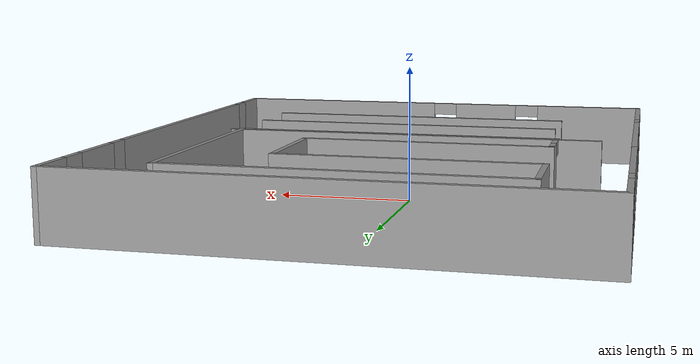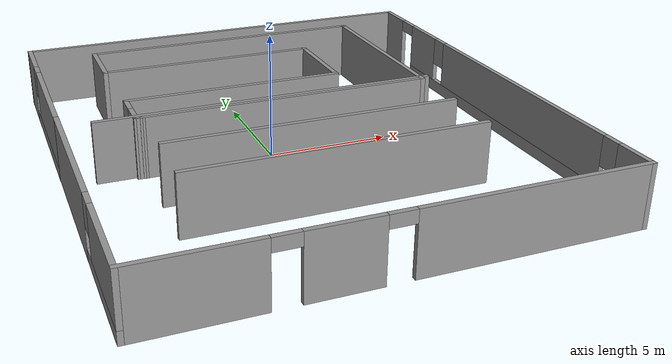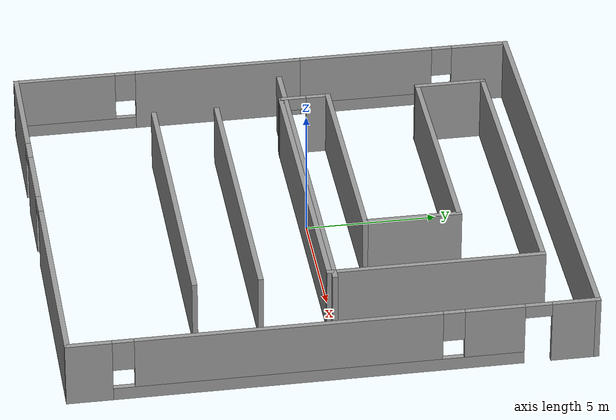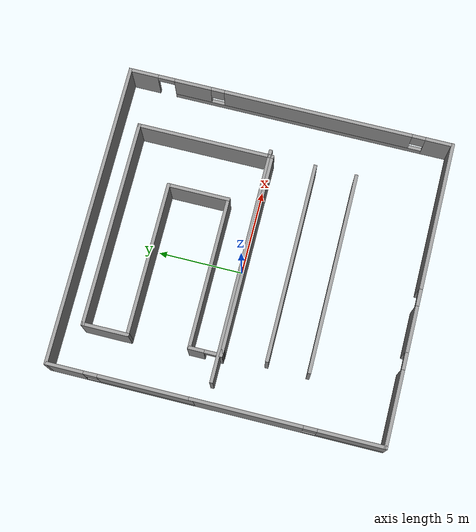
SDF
<?xml version='1.0'?>
<sdf version='1.4'>
  <model name='whouse'>
    <link name='Wall_24'>
      <collision name='Wall_24_Collision'>
        <geometry>
          <box>
            <size>14.0 0.2 2.5</size>
          </box>
        </geometry>
        <pose>0 0 1.25 0 -0 0</pose>
      </collision>
      <visual name='Wall_24_Visual'>
        <pose>0 0 1.25 0 -0 0</pose>
        <geometry>
          <box>
            <size>14.0 0.2 2.5</size>
          </box>
        </geometry>
        <material>
          <script>
            <uri>file://media/materials/scripts/gazebo.material</uri>
            <name>Gazebo/Grey</name>
          </script>
        </material>
      </visual>
      <velocity_decay>
        <linear>0</linear>
        <angular>0</angular>
      </velocity_decay>
      <pose>0 0 0 0 -0 0</pose>
    </link>
    <link name='Wall_26'>
      <collision name='Wall_26_Collision'>
        <geometry>
          <box>
            <size>11.9041 0.2 2.5</size>
          </box>
        </geometry>
        <pose>0 0 1.25 0 -0 0</pose>
      </collision>
      <visual name='Wall_26_Visual'>
        <pose>0 0 1.25 0 -0 0</pose>
        <geometry>
          <box>
            <size>11.9041 0.2 2.5</size>
          </box>
        </geometry>
        <material>
          <script>
            <uri>file://media/materials/scripts/gazebo.material</uri>
            <name>Gazebo/Grey</name>
          </script>
        </material>
      </visual>
      <velocity_decay>
        <linear>0</linear>
        <angular>0</angular>
      </velocity_decay>
      <pose>0.776272 -5.17892 0 0 -0 0</pose>
    </link>
    <link name='Wall_28'>
      <collision name='Wall_28_Collision'>
        <geometry>
          <box>
            <size>11.8509 0.2 2.5</size>
          </box>
        </geometry>
        <pose>0 0 1.25 0 -0 0</pose>
      </collision>
      <visual name='Wall_28_Visual'>
        <pose>0 0 1.25 0 -0 0</pose>
        <geometry>
          <box>
            <size>11.8509 0.2 2.5</size>
          </box>
        </geometry>
        <material>
          <script>
            <uri>file://media/materials/scripts/gazebo.material</uri>
            <name>Gazebo/Grey</name>
          </script>
        </material>
      </visual>
      <velocity_decay>
        <linear>0</linear>
        <angular>0</angular>
      </velocity_decay>
      <pose>0.802873 -2.7317 0 0 -0 0</pose>
    </link>
    <link name='Wall_3'>
      <pose>-8.13557 -4.65606 0 0 0 -1.5708</pose>
      <visual name='Wall_3_Visual_0'>
        <pose>-2.38773 0 1.25 0 -0 0</pose>
        <geometry>
          <box>
            <size>6.54185 0.2 2.5</size>
          </box>
        </geometry>
        <material>
          <script>
            <uri>file://media/materials/scripts/gazebo.material</uri>
            <name>Gazebo/Grey</name>
          </script>
        </material>
      </visual>
      <collision name='Wall_3_Collision_0'>
        <geometry>
          <box>
            <size>6.54185 0.2 2.5</size>
          </box>
        </geometry>
        <pose>-2.38773 0 1.25 0 -0 0</pose>
      </collision>
      <visual name='Wall_3_Visual_1'>
        <pose>3.27092 0 0.25 0 -0 0</pose>
        <geometry>
          <box>
            <size>4.77546 0.2 0.5</size>
          </box>
        </geometry>
        <material>
          <script>
            <uri>file://media/materials/scripts/gazebo.material</uri>
            <name>Gazebo/Grey</name>
          </script>
        </material>
      </visual>
      <collision name='Wall_3_Collision_1'>
        <geometry>
          <box>
            <size>4.77546 0.2 0.5</size>
          </box>
        </geometry>
        <pose>3.27092 0 0.25 0 -0 0</pose>
      </collision>
      <visual name='Wall_3_Visual_2'>
        <pose>3.67092 0 1.5 0 -0 0</pose>
        <geometry>
          <box>
            <size>3.97546 0.2 2</size>
          </box>
        </geometry>
        <material>
          <script>
            <uri>file://media/materials/scripts/gazebo.material</uri>
            <name>Gazebo/Grey</name>
          </script>
        </material>
      </visual>
      <collision name='Wall_3_Collision_2'>
        <geometry>
          <box>
            <size>3.97546 0.2 2</size>
          </box>
        </geometry>
        <pose>3.67092 0 1.5 0 -0 0</pose>
      </collision>
      <visual name='Wall_3_Visual_3'>
        <pose>1.2832 0 1.9 0 -0 0</pose>
        <geometry>
          <box>
            <size>0.8 0.2 1.2</size>
          </box>
        </geometry>
        <material>
          <script>
            <uri>file://media/materials/scripts/gazebo.material</uri>
            <name>Gazebo/Grey</name>
          </script>
        </material>
      </visual>
      <collision name='Wall_3_Collision_3'>
        <geometry>
          <box>
            <size>0.8 0.2 1.2</size>
          </box>
        </geometry>
        <pose>1.2832 0 1.9 0 -0 0</pose>
      </collision>
    </link>
    <link name='Wall_4'>
      <pose>0.844676 -10.2147 0 0 -0 0</pose>
      <visual name='Wall_4_Visual_0'>
        <pose>-6.81576 0 1.25 0 -0 0</pose>
        <geometry>
          <box>
            <size>4.52898 0.2 2.5</size>
          </box>
        </geometry>
        <material>
          <script>
            <uri>file://media/materials/scripts/gazebo.material</uri>
            <name>Gazebo/Grey</name>
          </script>
        </material>
      </visual>
      <collision name='Wall_4_Collision_0'>
        <geometry>
          <box>
            <size>4.52898 0.2 2.5</size>
          </box>
        </geometry>
        <pose>-6.81576 0 1.25 0 -0 0</pose>
      </collision>
      <visual name='Wall_4_Visual_1'>
        <pose>-2.18826 0 1.25 0 -0 0</pose>
        <geometry>
          <box>
            <size>2.726 0.2 2.5</size>
          </box>
        </geometry>
        <material>
          <script>
            <uri>file://media/materials/scripts/gazebo.material</uri>
            <name>Gazebo/Grey</name>
          </script>
        </material>
      </visual>
      <collision name='Wall_4_Collision_1'>
        <geometry>
          <box>
            <size>2.726 0.2 2.5</size>
          </box>
        </geometry>
        <pose>-2.18826 0 1.25 0 -0 0</pose>
      </collision>
      <visual name='Wall_4_Visual_2'>
        <pose>4.62749 0 1.25 0 -0 0</pose>
        <geometry>
          <box>
            <size>8.90551 0.2 2.5</size>
          </box>
        </geometry>
        <material>
          <script>
            <uri>file://media/materials/scripts/gazebo.material</uri>
            <name>Gazebo/Grey</name>
          </script>
        </material>
      </visual>
      <collision name='Wall_4_Collision_2'>
        <geometry>
          <box>
            <size>8.90551 0.2 2.5</size>
          </box>
        </geometry>
        <pose>4.62749 0 1.25 0 -0 0</pose>
      </collision>
      <visual name='Wall_4_Visual_3'>
        <pose>-4.05126 0 2.25 0 -0 0</pose>
        <geometry>
          <box>
            <size>1 0.2 0.5</size>
          </box>
        </geometry>
        <material>
          <script>
            <uri>file://media/materials/scripts/gazebo.material</uri>
            <name>Gazebo/Grey</name>
          </script>
        </material>
      </visual>
      <collision name='Wall_4_Collision_3'>
        <geometry>
          <box>
            <size>1 0.2 0.5</size>
          </box>
        </geometry>
        <pose>-4.05126 0 2.25 0 -0 0</pose>
      </collision>
      <visual name='Wall_4_Visual_4'>
        <pose>-0.325265 0 2.25 0 -0 0</pose>
        <geometry>
          <box>
            <size>1 0.2 0.5</size>
          </box>
        </geometry>
        <material>
          <script>
            <uri>file://media/materials/scripts/gazebo.material</uri>
            <name>Gazebo/Grey</name>
          </script>
        </material>
      </visual>
      <collision name='Wall_4_Collision_4'>
        <geometry>
          <box>
            <size>1 0.2 0.5</size>
          </box>
        </geometry>
        <pose>-0.325265 0 2.25 0 -0 0</pose>
      </collision>
    </link>
    <link name='Wall_40'>
      <collision name='Wall_40_Collision'>
        <geometry>
          <box>
            <size>11.9503 0.2 2.5</size>
          </box>
        </geometry>
        <pose>0 0 1.25 0 -0 0</pose>
      </collision>
      <visual name='Wall_40_Visual'>
        <pose>0 0 1.25 0 -0 0</pose>
        <geometry>
          <box>
            <size>11.9503 0.2 2.5</size>
          </box>
        </geometry>
        <material>
          <script>
            <uri>file://media/materials/scripts/gazebo.material</uri>
            <name>Gazebo/Grey</name>
          </script>
        </material>
      </visual>
      <velocity_decay>
        <linear>0</linear>
        <angular>0</angular>
      </velocity_decay>
      <pose>0.735923 -0.172104 0 0 -0 0</pose>
    </link>
    <link name='Wall_41'>
      <collision name='Wall_41_Collision'>
        <geometry>
          <box>
            <size>8.20319 0.2 2.5</size>
          </box>
        </geometry>
        <pose>0 0 1.25 0 -0 0</pose>
      </collision>
      <visual name='Wall_41_Visual'>
        <pose>0 0 1.25 0 -0 0</pose>
        <geometry>
          <box>
            <size>8.20319 0.2 2.5</size>
          </box>
        </geometry>
        <material>
          <script>
            <uri>file://media/materials/scripts/gazebo.material</uri>
            <name>Gazebo/Grey</name>
          </script>
        </material>
      </visual>
      <velocity_decay>
        <linear>0</linear>
        <angular>0</angular>
      </velocity_decay>
      <pose>6.6111 3.82949 0 0 -0 1.5708</pose>
    </link>
    <link name='Wall_42'>
      <collision name='Wall_42_Collision'>
        <geometry>
          <box>
            <size>12.3204 0.2 2.5</size>
          </box>
        </geometry>
        <pose>0 0 1.25 0 -0 0</pose>
      </collision>
      <visual name='Wall_42_Visual'>
        <pose>0 0 1.25 0 -0 0</pose>
        <geometry>
          <box>
            <size>12.3204 0.2 2.5</size>
          </box>
        </geometry>
        <material>
          <script>
            <uri>file://media/materials/scripts/gazebo.material</uri>
            <name>Gazebo/Grey</name>
          </script>
        </material>
      </visual>
      <velocity_decay>
        <linear>0</linear>
        <angular>0</angular>
      </velocity_decay>
      <pose>0.550878 7.83109 0 0 -0 3.14159</pose>
    </link>
    <link name='Wall_43'>
      <collision name='Wall_43_Collision'>
        <geometry>
          <box>
            <size>2.79063 0.2 2.5</size>
          </box>
        </geometry>
        <pose>0 0 1.25 0 -0 0</pose>
      </collision>
      <visual name='Wall_43_Visual'>
        <pose>0 0 1.25 0 -0 0</pose>
        <geometry>
          <box>
            <size>2.79063 0.2 2.5</size>
          </box>
        </geometry>
        <material>
          <script>
            <uri>file://media/materials/scripts/gazebo.material</uri>
            <name>Gazebo/Grey</name>
          </script>
        </material>
      </visual>
      <velocity_decay>
        <linear>0</linear>
        <angular>0</angular>
      </velocity_decay>
      <pose>-5.50934 6.53577 0 0 0 -1.5708</pose>
    </link>
    <link name='Wall_44'>
      <collision name='Wall_44_Collision'>
        <geometry>
          <box>
            <size>9.22094 0.2 2.5</size>
          </box>
        </geometry>
        <pose>0 0 1.25 0 -0 0</pose>
      </collision>
      <visual name='Wall_44_Visual'>
        <pose>0 0 1.25 0 -0 0</pose>
        <geometry>
          <box>
            <size>9.22094 0.2 2.5</size>
          </box>
        </geometry>
        <material>
          <script>
            <uri>file://media/materials/scripts/gazebo.material</uri>
            <name>Gazebo/Grey</name>
          </script>
        </material>
      </visual>
      <velocity_decay>
        <linear>0</linear>
        <angular>0</angular>
      </velocity_decay>
      <pose>-0.998872 5.24046 0 0 -0 0</pose>
    </link>
    <link name='Wall_45'>
      <collision name='Wall_45_Collision'>
        <geometry>
          <box>
            <size>3.76211 0.2 2.5</size>
          </box>
        </geometry>
        <pose>0 0 1.25 0 -0 0</pose>
      </collision>
      <visual name='Wall_45_Visual'>
        <pose>0 0 1.25 0 -0 0</pose>
        <geometry>
          <box>
            <size>3.76211 0.2 2.5</size>
          </box>
        </geometry>
        <material>
          <script>
            <uri>file://media/materials/scripts/gazebo.material</uri>
            <name>Gazebo/Grey</name>
          </script>
        </material>
      </visual>
      <velocity_decay>
        <linear>0</linear>
        <angular>0</angular>
      </velocity_decay>
      <pose>3.5116 3.4594 0 0 0 -1.5708</pose>
    </link>
    <link name='Wall_46'>
      <collision name='Wall_46_Collision'>
        <geometry>
          <box>
            <size>9.08215 0.2 2.5</size>
          </box>
        </geometry>
        <pose>0 0 1.25 0 -0 0</pose>
      </collision>
      <visual name='Wall_46_Visual'>
        <pose>0 0 1.25 0 -0 0</pose>
        <geometry>
          <box>
            <size>9.08215 0.2 2.5</size>
          </box>
        </geometry>
        <material>
          <script>
            <uri>file://media/materials/scripts/gazebo.material</uri>
            <name>Gazebo/Grey</name>
          </script>
        </material>
      </visual>
      <velocity_decay>
        <linear>0</linear>
        <angular>0</angular>
      </velocity_decay>
      <pose>-0.929481 1.67834 0 0 -0 3.14159</pose>
    </link>
    <link name='Wall_47'>
      <pose>-5.37056 0.76186 0 0 0 -1.5708</pose>
      <visual name='Wall_47_Visual_0'>
        <pose>-0.535688 0 1.25 0 -0 0</pose>
        <geometry>
          <box>
            <size>0.961595 0.2 2.5</size>
          </box>
        </geometry>
        <material>
          <script>
            <uri>file://media/materials/scripts/gazebo.material</uri>
            <name>Gazebo/Grey</name>
          </script>
        </material>
      </visual>
      <collision name='Wall_47_Collision_0'>
        <geometry>
          <box>
            <size>0.961595 0.2 2.5</size>
          </box>
        </geometry>
        <pose>-0.535688 0 1.25 0 -0 0</pose>
      </collision>
      <visual name='Wall_47_Visual_1'>
        <pose>0.980797 0 1.25 0 -0 0</pose>
        <geometry>
          <box>
            <size>0.071375 0.2 2.5</size>
          </box>
        </geometry>
        <material>
          <script>
            <uri>file://media/materials/scripts/gazebo.material</uri>
            <name>Gazebo/Grey</name>
          </script>
        </material>
      </visual>
      <collision name='Wall_47_Collision_1'>
        <geometry>
          <box>
            <size>0.071375 0.2 2.5</size>
          </box>
        </geometry>
        <pose>0.980797 0 1.25 0 -0 0</pose>
      </collision>
      <visual name='Wall_47_Visual_2'>
        <pose>0.44511 0 2.25 0 -0 0</pose>
        <geometry>
          <box>
            <size>1 0.2 0.5</size>
          </box>
        </geometry>
        <material>
          <script>
            <uri>file://media/materials/scripts/gazebo.material</uri>
            <name>Gazebo/Grey</name>
          </script>
        </material>
      </visual>
      <collision name='Wall_47_Collision_2'>
        <geometry>
          <box>
            <size>1 0.2 0.5</size>
          </box>
        </geometry>
        <pose>0.44511 0 2.25 0 -0 0</pose>
      </collision>
    </link>
    <link name='Wall_48'>
      <collision name='Wall_48_Collision'>
        <geometry>
          <box>
            <size>0.431966 0.2 2.5</size>
          </box>
        </geometry>
        <pose>0 0 1.25 0 -0 0</pose>
      </collision>
      <visual name='Wall_48_Visual'>
        <pose>0 0 1.25 0 -0 0</pose>
        <geometry>
          <box>
            <size>0.431966 0.2 2.5</size>
          </box>
        </geometry>
        <material>
          <script>
            <uri>file://media/materials/scripts/gazebo.material</uri>
            <name>Gazebo/Grey</name>
          </script>
        </material>
      </visual>
      <velocity_decay>
        <linear>0</linear>
        <angular>0</angular>
      </velocity_decay>
      <pose>-5.2549 -0.163365 0 0 0 -0.075425</pose>
    </link>
    <link name='Wall_5'>
      <pose>9.82493 -0.490897 0 0 -0 1.5708</pose>
      <visual name='Wall_5_Visual_0'>
        <pose>-8.96308 0 1.25 0 -0 0</pose>
        <geometry>
          <box>
            <size>1.72145 0.2 2.5</size>
          </box>
        </geometry>
        <material>
          <script>
            <uri>file://media/materials/scripts/gazebo.material</uri>
            <name>Gazebo/Grey</name>
          </script>
        </material>
      </visual>
      <collision name='Wall_5_Collision_0'>
        <geometry>
          <box>
            <size>1.72145 0.2 2.5</size>
          </box>
        </geometry>
        <pose>-8.96308 0 1.25 0 -0 0</pose>
      </collision>
      <visual name='Wall_5_Visual_1'>
        <pose>8.92372 0 1.25 0 -0 0</pose>
        <geometry>
          <box>
            <size>1.80015 0.2 2.5</size>
          </box>
        </geometry>
        <material>
          <script>
            <uri>file://media/materials/scripts/gazebo.material</uri>
            <name>Gazebo/Grey</name>
          </script>
        </material>
      </visual>
      <collision name='Wall_5_Collision_1'>
        <geometry>
          <box>
            <size>1.80015 0.2 2.5</size>
          </box>
        </geometry>
        <pose>8.92372 0 1.25 0 -0 0</pose>
      </collision>
      <visual name='Wall_5_Visual_2'>
        <pose>-0.539353 0 0.25 0 -0 0</pose>
        <geometry>
          <box>
            <size>15.126 0.2 0.5</size>
          </box>
        </geometry>
        <material>
          <script>
            <uri>file://media/materials/scripts/gazebo.material</uri>
            <name>Gazebo/Grey</name>
          </script>
        </material>
      </visual>
      <collision name='Wall_5_Collision_2'>
        <geometry>
          <box>
            <size>15.126 0.2 0.5</size>
          </box>
        </geometry>
        <pose>-0.539353 0 0.25 0 -0 0</pose>
      </collision>
      <visual name='Wall_5_Visual_3'>
        <pose>-1.65335 0 1.5 0 -0 0</pose>
        <geometry>
          <box>
            <size>11.298 0.2 2</size>
          </box>
        </geometry>
        <material>
          <script>
            <uri>file://media/materials/scripts/gazebo.material</uri>
            <name>Gazebo/Grey</name>
          </script>
        </material>
      </visual>
      <collision name='Wall_5_Collision_3'>
        <geometry>
          <box>
            <size>11.298 0.2 2</size>
          </box>
        </geometry>
        <pose>-1.65335 0 1.5 0 -0 0</pose>
      </collision>
      <visual name='Wall_5_Visual_4'>
        <pose>5.90965 0 1.5 0 -0 0</pose>
        <geometry>
          <box>
            <size>2.228 0.2 2</size>
          </box>
        </geometry>
        <material>
          <script>
            <uri>file://media/materials/scripts/gazebo.material</uri>
            <name>Gazebo/Grey</name>
          </script>
        </material>
      </visual>
      <collision name='Wall_5_Collision_4'>
        <geometry>
          <box>
            <size>2.228 0.2 2</size>
          </box>
        </geometry>
        <pose>5.90965 0 1.5 0 -0 0</pose>
      </collision>
      <visual name='Wall_5_Visual_5'>
        <pose>-7.70235 0 1.9 0 -0 0</pose>
        <geometry>
          <box>
            <size>0.8 0.2 1.2</size>
          </box>
        </geometry>
        <material>
          <script>
            <uri>file://media/materials/scripts/gazebo.material</uri>
            <name>Gazebo/Grey</name>
          </script>
        </material>
      </visual>
      <collision name='Wall_5_Collision_5'>
        <geometry>
          <box>
            <size>0.8 0.2 1.2</size>
          </box>
        </geometry>
        <pose>-7.70235 0 1.9 0 -0 0</pose>
      </collision>
      <visual name='Wall_5_Visual_6'>
        <pose>4.39565 0 1.9 0 -0 0</pose>
        <geometry>
          <box>
            <size>0.8 0.2 1.2</size>
          </box>
        </geometry>
        <material>
          <script>
            <uri>file://media/materials/scripts/gazebo.material</uri>
            <name>Gazebo/Grey</name>
          </script>
        </material>
      </visual>
      <collision name='Wall_5_Collision_6'>
        <geometry>
          <box>
            <size>0.8 0.2 1.2</size>
          </box>
        </geometry>
        <pose>4.39565 0 1.9 0 -0 0</pose>
      </collision>
      <visual name='Wall_5_Visual_7'>
        <pose>7.52365 0 2.25 0 -0 0</pose>
        <geometry>
          <box>
            <size>1 0.2 0.5</size>
          </box>
        </geometry>
        <material>
          <script>
            <uri>file://media/materials/scripts/gazebo.material</uri>
            <name>Gazebo/Grey</name>
          </script>
        </material>
      </visual>
      <collision name='Wall_5_Collision_7'>
        <geometry>
          <box>
            <size>1 0.2 0.5</size>
          </box>
        </geometry>
        <pose>7.52365 0 2.25 0 -0 0</pose>
      </collision>
    </link>
    <link name='Wall_6'>
      <collision name='Wall_6_Collision'>
        <geometry>
          <box>
            <size>18.1687 0.2 2.5</size>
          </box>
        </geometry>
        <pose>0 0 1.25 0 -0 0</pose>
      </collision>
      <visual name='Wall_6_Visual'>
        <pose>0 0 1.25 0 -0 0</pose>
        <geometry>
          <box>
            <size>18.1687 0.2 2.5</size>
          </box>
        </geometry>
        <material>
          <script>
            <uri>file://media/materials/scripts/gazebo.material</uri>
            <name>Gazebo/Grey</name>
          </script>
        </material>
      </visual>
      <velocity_decay>
        <linear>0</linear>
        <angular>0</angular>
      </velocity_decay>
      <pose>0.840595 9.23289 0 0 -0 3.14159</pose>
    </link>
    <link name='Wall_7'>
      <pose>-8.14374 5.02583 0 0 0 -1.5708</pose>
      <visual name='Wall_7_Visual_0'>
        <pose>-3.17299 0 1.25 0 -0 0</pose>
        <geometry>
          <box>
            <size>2.26814 0.2 2.5</size>
          </box>
        </geometry>
        <material>
          <script>
            <uri>file://media/materials/scripts/gazebo.material</uri>
            <name>Gazebo/Grey</name>
          </script>
        </material>
      </visual>
      <collision name='Wall_7_Collision_0'>
        <geometry>
          <box>
            <size>2.26814 0.2 2.5</size>
          </box>
        </geometry>
        <pose>-3.17299 0 1.25 0 -0 0</pose>
      </collision>
      <visual name='Wall_7_Visual_1'>
        <pose>1.13407 0 0.25 0 -0 0</pose>
        <geometry>
          <box>
            <size>6.34598 0.2 0.5</size>
          </box>
        </geometry>
        <material>
          <script>
            <uri>file://media/materials/scripts/gazebo.material</uri>
            <name>Gazebo/Grey</name>
          </script>
        </material>
      </visual>
      <collision name='Wall_7_Collision_1'>
        <geometry>
          <box>
            <size>6.34598 0.2 0.5</size>
          </box>
        </geometry>
        <pose>1.13407 0 0.25 0 -0 0</pose>
      </collision>
      <visual name='Wall_7_Visual_2'>
        <pose>1.53407 0 1.5 0 -0 0</pose>
        <geometry>
          <box>
            <size>5.54598 0.2 2</size>
          </box>
        </geometry>
        <material>
          <script>
            <uri>file://media/materials/scripts/gazebo.material</uri>
            <name>Gazebo/Grey</name>
          </script>
        </material>
      </visual>
      <collision name='Wall_7_Collision_2'>
        <geometry>
          <box>
            <size>5.54598 0.2 2</size>
          </box>
        </geometry>
        <pose>1.53407 0 1.5 0 -0 0</pose>
      </collision>
      <visual name='Wall_7_Visual_3'>
        <pose>-1.63892 0 1.9 0 -0 0</pose>
        <geometry>
          <box>
            <size>0.8 0.2 1.2</size>
          </box>
        </geometry>
        <material>
          <script>
            <uri>file://media/materials/scripts/gazebo.material</uri>
            <name>Gazebo/Grey</name>
          </script>
        </material>
      </visual>
      <collision name='Wall_7_Collision_3'>
        <geometry>
          <box>
            <size>0.8 0.2 1.2</size>
          </box>
        </geometry>
        <pose>-1.63892 0 1.9 0 -0 0</pose>
      </collision>
    </link>
    <static>1</static>
  </model>
</sdf>
